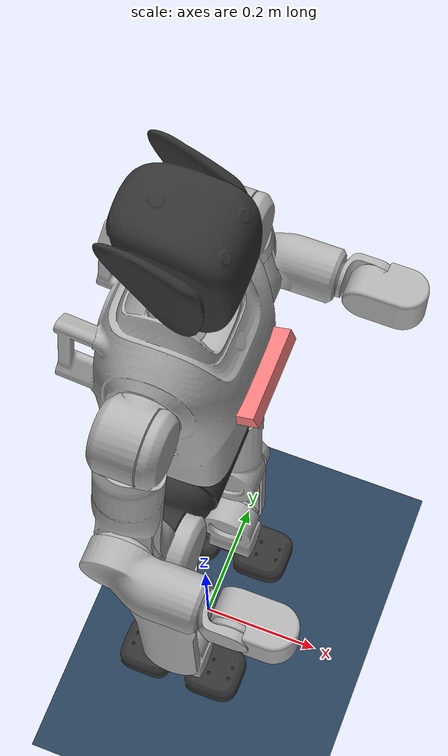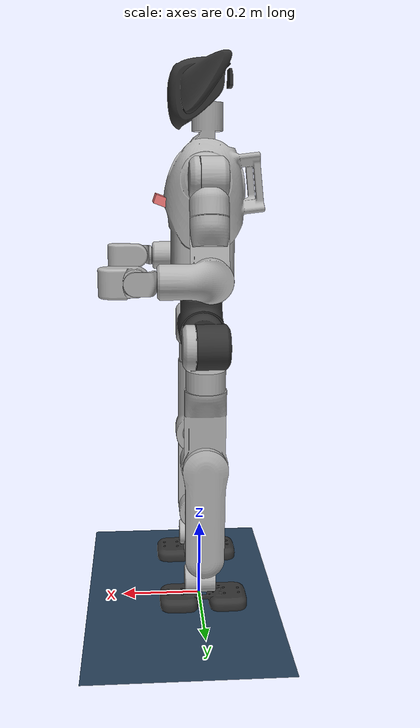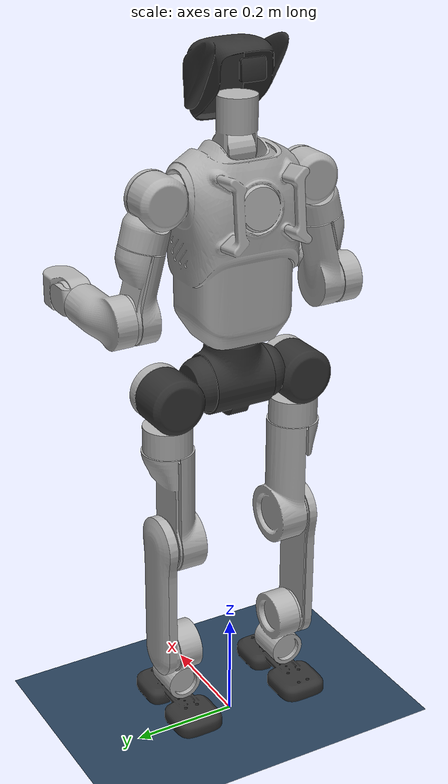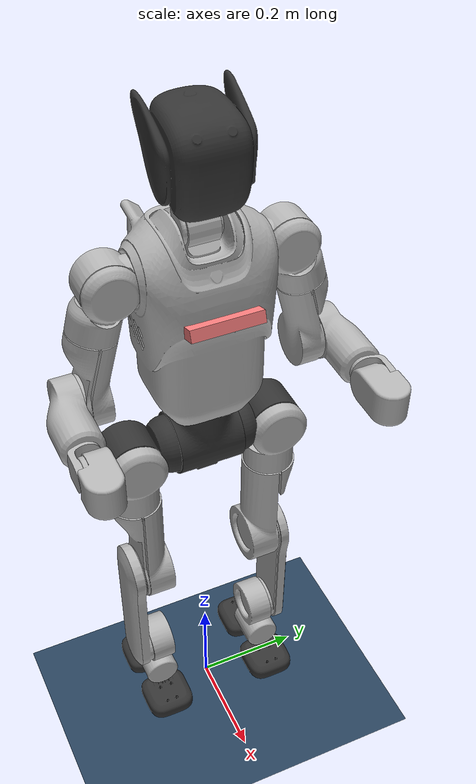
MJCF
<mujoco model="E1_v2">
  <compiler angle="radian" meshdir="../meshes/"/>

  <default>
    <default class="e1">
      <geom contype="0" conaffinity="0"/>
      <joint frictionloss="0.01" damping="0.01"/>

      <default class="hip">
        <default class="hip_pitch">
          <joint axis="0 1 0" range="-2.5307 2.8798" actuatorfrcrange="-120 120" armature="0.01"/>
        </default>
        <default class="hip_roll">
          <joint axis="1 0 0" actuatorfrcrange="-120 120" armature="0.01"/>
        </default>
        <default class="hip_yaw">
          <joint axis="0 0 1" range="-2.0944 2.0944" actuatorfrcrange="-36 36" armature="0.01"/>
        </default>
      </default>
      <default class="knee">
        <joint axis="0 1 0" range="0 2.2689" actuatorfrcrange="-120 120" armature="0.01"/>
      </default>
      <default class="ankle">
        <default class="ankle_pitch">
          <joint axis="0 1 0" range="-0.5236 0.5236" actuatorfrcrange="-36 36" armature="0.01"/>
        </default>
        <default class="ankle_roll">
          <joint axis="1 0 0" range="-1.5708 1.5708" actuatorfrcrange="-30 30" armature="0.01"/>
        </default>
      </default>
      <default class="waist_yaw">
        <joint axis="0 0 1" range="-2.0944 2.0944" actuatorfrcrange="-60 60" armature="0.01"/>
      </default>
      <default class="shoulder">
        <default class="shoulder_pitch">
          <joint axis="0 1 0" range="-2.2253 0.9163" actuatorfrcrange="-60 60" armature="0.01"/>
        </default>
        <default class="shoulder_roll">
          <joint axis="1 0 0" actuatorfrcrange="-36 36" armature="0.01"/>
        </default>
        <default class="shoulder_yaw">
          <joint axis="0 0 1" range="-2.0944 2.0944" actuatorfrcrange="-15 15" armature="0.01"/>
        </default>
      </default>
      <default class="elbow">
        <joint axis="0 1 0" range="-0.698 1.5708" actuatorfrcrange="-60 60" armature="0.01"/>
      </default>

      <default class="visual">
        <geom group="2" type="mesh" density="0" material="silver"/>
      </default>
      <default class="collision">
        <geom group="3" type="mesh" rgba=".2 .6 .2 .3" contype="1" conaffinity="1"/>
        <default class="foot_capsule">
          <geom type="capsule" size="0.01"/>
        </default>
      </default>
    </default>
  </default>

  <asset>
    <material name="silver" rgba="0.7 0.7 0.7 1"/>
    <material name="black" rgba="0.2 0.2 0.2 1"/>

    <mesh name="pelvis" file="pelvis.STL"/>
    <mesh name="left_hip_pitch_link_v1" file="left_hip_pitch_link_v1.STL"/>
    <mesh name="left_hip_roll_link_v1" file="left_hip_roll_link_v1.STL"/>
    <mesh name="left_hip_yaw_link" file="left_hip_yaw_link.STL"/>
    <mesh name="left_knee_link" file="left_knee_link.STL"/>
    <mesh name="left_ankle_pitch_link" file="left_ankle_pitch_link.STL"/>
    <mesh name="left_ankle_roll_link_v1_2" file="left_ankle_roll_link_v1_2.STL"/>
    <mesh name="right_hip_pitch_link_v1" file="right_hip_pitch_link_v1.STL"/>
    <mesh name="right_hip_roll_link_v1" file="right_hip_roll_link_v1.STL"/>
    <mesh name="right_hip_yaw_link" file="right_hip_yaw_link.STL"/>
    <mesh name="right_knee_link" file="right_knee_link.STL"/>
    <mesh name="right_ankle_pitch_link" file="right_ankle_pitch_link.STL"/>
    <mesh name="right_ankle_roll_link_v1_2" file="right_ankle_roll_link_v1_2.STL"/>
    <mesh name="torso_link" file="torso_link.STL"/>
    <mesh name="left_shoulder_pitch_link" file="left_shoulder_pitch_link.STL"/>
    <mesh name="left_shoulder_roll_link" file="left_shoulder_roll_link.STL"/>
    <mesh name="left_shoulder_yaw_link" file="left_shoulder_yaw_link.STL"/>
    <mesh name="left_elbow_link" file="left_elbow_link.STL"/>
    <mesh name="left_wrist_roll_link" file="left_wrist_roll_link.STL"/>
    <mesh name="left_wrist_pitch_link" file="left_wrist_pitch_link.STL"/>
    <mesh name="right_shoulder_pitch_link" file="right_shoulder_pitch_link.STL"/>
    <mesh name="right_shoulder_roll_link" file="right_shoulder_roll_link.STL"/>
    <mesh name="right_shoulder_yaw_link" file="right_shoulder_yaw_link.STL"/>
    <mesh name="right_elbow_link" file="right_elbow_link.STL"/>
    <mesh name="right_wrist_roll_link" file="right_wrist_roll_link.STL"/>
    <mesh name="right_wrist_pitch_link" file="right_wrist_pitch_link.STL"/>
    <mesh name="head_pitch_link" file="head_pitch_link.STL"/>
    <mesh name="head_yaw_link" file="head_yaw_link.STL"/>
  </asset>

  <worldbody>
    <body name="pelvis" pos="0 0 0.715" childclass="e1">
      <inertial pos="-2.026e-05 0 0.0250193" quat="1 -1.77058e-05 -6.2652e-05 0.000906207" mass="3.6" diaginertia="0.0112704 0.00928407 0.00672158"/>
      <freejoint name="floating_base_joint"/>
      <geom class="visual" material="black" mesh="pelvis"/>
      <geom class="visual" mesh="pelvis"/>
      <geom class="collision" mesh="pelvis"/>
      <body name="left_hip_pitch_link" pos="0 0.0575 0">
        <inertial pos="-0.00088321 0.00557735 0.00140978" quat="0.775267 0.629946 -0.0078282 0.0454583" mass="1.334" diaginertia="0.00189368 0.00156703 0.00119457"/>
        <joint name="left_hip_pitch_joint" class="hip_pitch"/>
        <geom class="visual" material="black" mesh="left_hip_pitch_link_v1"/>
        <body name="left_hip_roll_link" pos="0 0.0725 -0.012">
          <inertial pos="-0.00054795 0.00928439 -0.070913" quat="0.72708 0.0123078 0.0971982 0.679526" mass="0.981" diaginertia="0.00140293 0.0012261 0.000954215"/>
          <joint name="left_hip_roll_joint" class="hip_roll" range="-0.5236 3.1416"/>
          <geom class="visual" mesh="left_hip_roll_link_v1"/>
          <geom class="collision" mesh="left_hip_roll_link_v1"/>
          <body name="left_hip_yaw_link" pos="0 0 -0.106">
            <inertial pos="-8.81e-06 -0.00845833 -0.163113" quat="0.707299 -0.00656895 0.00682479 0.706851" mass="1.56" diaginertia="0.00493085 0.00429472 0.00135114"/>
            <joint name="left_hip_yaw_joint" class="hip_yaw"/>
            <geom class="visual" mesh="left_hip_yaw_link"/>
            <geom class="collision" mesh="left_hip_yaw_link"/>
            <body name="left_knee_link" pos="0 0 -0.182">
              <inertial pos="-0.00054127 0.020434 -0.100513" quat="0.710429 -0.000848428 0.00238427 0.703764" mass="0.389" diaginertia="0.00417321 0.00390613 0.000296172"/>
              <joint name="left_knee_joint" class="knee"/>
              <geom class="visual" mesh="left_knee_link"/>
              <geom class="collision" mesh="left_knee_link"/>
              <body name="left_ankle_pitch_link" pos="0 0 -0.23">
                <inertial pos="0.00011592 -0.00958151 -0.0284272" quat="0.705154 0.0494053 -0.049277 0.705612" mass="1.333" diaginertia="0.00253878 0.00227413 0.000815969"/>
                <joint name="left_ankle_pitch_joint" class="ankle_pitch"/>
                <geom class="visual" mesh="left_ankle_pitch_link"/>
                <body name="left_ankle_roll_link" pos="0 -0.016 -0.07">
                  <inertial pos="-0.00176848 0 -0.0465728" quat="0 0.706212 0 0.708" mass="0.578" diaginertia="0.0023466 0.00219847 0.000444688"/>
                  <joint name="left_ankle_roll_joint" class="ankle_roll"/>
                  <site name="left_foot_height_scan" pos="0 0 0" size="0.005" rgba="0 0 0 0"/>
                  <geom class="visual" material="black" mesh="left_ankle_roll_link_v1_2"/>
                  <geom name="left_foot1_collision" class="foot_capsule" fromto="-0.097 -0.037 -0.0578 0.097 -0.037 -0.0578"/>
                  <geom name="left_foot2_collision" class="foot_capsule" fromto="-0.097 -0.025 -0.0578 0.097 -0.025 -0.0578"/>
                  <geom name="left_foot3_collision" class="foot_capsule" fromto="-0.097 -0.0125 -0.0578 0.097 -0.0125 -0.0578"/>
                  <geom name="left_foot4_collision" class="foot_capsule" fromto="-0.097 0 -0.0578 0.097 0 -0.0578"/>
                  <geom name="left_foot5_collision" class="foot_capsule" fromto="-0.097 0.0125 -0.0578 0.097 0.0125 -0.0578"/>
                  <geom name="left_foot6_collision" class="foot_capsule" fromto="-0.097 0.025 -0.0578 0.097 0.025 -0.0578"/>
                  <geom name="left_foot7_collision" class="foot_capsule" fromto="-0.097 0.037 -0.0578 0.097 0.037 -0.0578"/>
                </body>
              </body>
            </body>
          </body>
        </body>
      </body>
      <body name="right_hip_pitch_link" pos="0 -0.0575 0">
        <inertial pos="-0.00088321 -0.00557735 0.00140978" quat="0.629946 0.775267 -0.0454583 0.0078282" mass="1.334" diaginertia="0.00189368 0.00156703 0.00119457"/>
        <joint name="right_hip_pitch_joint" class="hip_pitch"/>
        <geom class="visual" material="black" mesh="right_hip_pitch_link_v1"/>
        <body name="right_hip_roll_link" pos="0 -0.0725 -0.012">
          <inertial pos="-0.00054795 -0.00928439 -0.070913" quat="0.679526 0.0971982 0.0123078 0.72708" mass="0.981" diaginertia="0.00140293 0.0012261 0.000954215"/>
          <joint name="right_hip_roll_joint" class="hip_roll" range="-3.1416 0.5236"/>
          <geom class="visual" mesh="right_hip_roll_link_v1"/>
          <geom class="collision" mesh="right_hip_roll_link_v1"/>
          <body name="right_hip_yaw_link" pos="0 0 -0.106">
            <inertial pos="8.81e-06 0.00845833 -0.163113" quat="0.707267 0.00689281 -0.00650074 0.706883" mass="1.561" diaginertia="0.00493085 0.00429472 0.00135113"/>
            <joint name="right_hip_yaw_joint" class="hip_yaw"/>
            <geom class="visual" mesh="right_hip_yaw_link"/>
            <geom class="collision" mesh="right_hip_yaw_link"/>
            <body name="right_knee_link" pos="0 0 -0.182">
              <inertial pos="-0.00054256 -0.020434 -0.100513" quat="0.703753 0.00255437 -0.000679727 0.71044" mass="0.389" diaginertia="0.00417321 0.00390614 0.000296163"/>
              <joint name="right_knee_joint" class="knee"/>
              <geom class="visual" mesh="right_knee_link"/>
              <geom class="collision" mesh="right_knee_link"/>
              <body name="right_ankle_pitch_link" pos="0 0 -0.23">
                <inertial pos="0.00011592 0.00956002 -0.0284576" quat="0.706733 -0.0493233 0.0493065 0.704035" mass="1.333" diaginertia="0.0025364 0.00227145 0.000815675"/>
                <joint name="right_ankle_pitch_joint" class="ankle_pitch"/>
                <geom class="visual" mesh="right_ankle_pitch_link"/>
                <body name="right_ankle_roll_link" pos="0 0.016 -0.07">
                  <inertial pos="-0.00176848 0 -0.0465753" quat="0 0.706212 0 0.708" mass="0.578" diaginertia="0.0023466 0.00219847 0.000444688"/>
                  <joint name="right_ankle_roll_joint" class="ankle_roll"/>
                  <site name="right_foot_height_scan" pos="0 0 0" size="0.005" rgba="0 0 0 0"/>
                  <geom class="visual" material="black" mesh="right_ankle_roll_link_v1_2"/>
                  <geom name="right_foot1_collision" class="foot_capsule" fromto="-0.097 -0.037 -0.0578 0.097 -0.037 -0.0578"/>
                  <geom name="right_foot2_collision" class="foot_capsule" fromto="-0.097 -0.025 -0.0578 0.097 -0.025 -0.0578"/>
                  <geom name="right_foot3_collision" class="foot_capsule" fromto="-0.097 -0.0125 -0.0578 0.097 -0.0125 -0.0578"/>
                  <geom name="right_foot4_collision" class="foot_capsule" fromto="-0.097 0 -0.0578 0.097 0 -0.0578"/>
                  <geom name="right_foot5_collision" class="foot_capsule" fromto="-0.097 0.0125 -0.0578 0.097 0.0125 -0.0578"/>
                  <geom name="right_foot6_collision" class="foot_capsule" fromto="-0.097 0.025 -0.0578 0.097 0.025 -0.0578"/>
                  <geom name="right_foot7_collision" class="foot_capsule" fromto="-0.097 0.037 -0.0578 0.097 0.037 -0.0578"/>
                </body>
              </body>
            </body>
          </body>
        </body>
      </body>
      <body name="torso_link" pos="0 0 0.12">
        <inertial pos="0.00939865 -0.00010371 0.142031" quat="0.998895 0.000719594 0.047 0.000291884" mass="5.45" diaginertia="0.0520713 0.039092 0.0193737"/>
        <joint name="waist_yaw_joint" class="waist_yaw"/>
        <site name="imu_in_torso" size="0.01" pos="0 0 0" rgba="0 0 0 0"/>
        <geom class="visual" mesh="torso_link"/>
        <geom class="collision" mesh="torso_link"/>
        <!-- Torso origin is 0.12 m above pelvis.  This local pose preserves
             the former pelvis-relative camera pose (0.09, 0.0, 0.30). -->
        <camera name="depth_cam" pos="0.090 0.0 0.18" xyaxes="0 -1 0  0.940 0 0.342" fovy="58" resolution="64 36"/>
        <geom name="depth_cam_vis" pos="0.090 0.0 0.18" quat="0.6964 0.1228 -0.1228 -0.6964" size="0.06 0.02 0.01" rgba="1.0 0.5 0.5 1" type="box" group="2" contype="0" conaffinity="0"/>
        <body name="left_shoulder_pitch_link" pos="0 0.109 0.23">
          <inertial pos="0.0002164 0.0326152 7.9e-06" quat="0.705969 0.707947 -0.0128594 -0.015888" mass="0.764" diaginertia="0.000639277 0.000540109 0.000448694"/>
          <joint name="left_shoulder_pitch_joint" class="shoulder_pitch"/>
          <geom class="visual" mesh="left_shoulder_pitch_link"/>
          <body name="left_shoulder_roll_link" pos="0 0.036 0">
            <inertial pos="0.0091122 0.017234 -0.042207" quat="0.964204 0.187993 0.182061 0.0426904" mass="0.5" diaginertia="0.000780092 0.000718395 0.000287923"/>
            <joint name="left_shoulder_roll_joint" class="shoulder_roll" range="-0.5236 3.1416"/>
            <geom class="visual" mesh="left_shoulder_roll_link"/>
            <body name="left_shoulder_yaw_link" pos="0 0.03235 -0.091754" quat="0.991445 0.130526 0 0">
              <inertial pos="-3.07e-06 -0.0105563 -0.100188" quat="0.707013 0.0205321 -0.0204544 0.706606" mass="0.909" diaginertia="0.00125616 0.00114044 0.000561167"/>
              <joint name="left_shoulder_yaw_joint" class="shoulder_yaw"/>
              <geom class="visual" mesh="left_shoulder_yaw_link"/>
              <geom class="collision" mesh="left_shoulder_yaw_link"/>
              <body name="left_elbow_link" pos="0 0.016368 -0.11645" quat="0.991445 -0.130526 0 0">
                <inertial pos="0.0734429 0.0108741 -2.677e-05" quat="0.520428 0.521868 0.477567 0.478266" mass="0.525" diaginertia="0.000525457 0.00049276 0.000235073"/>
                <joint name="left_elbow_joint" class="elbow"/>
                <geom class="visual" mesh="left_elbow_link"/>
                <geom class="collision" mesh="left_elbow_link"/>
                <body name="left_wrist_roll_link" pos="0.1 0.0117 0">
                  <geom class="visual" mesh="left_wrist_roll_link"/>
                  <geom class="collision" mesh="left_wrist_roll_link"/>
                  <body name="left_wrist_pitch_link" pos="0.053 0 0">
                    <inertial pos="0.0225121 -0.00014957 -0.0006746" quat="0.621742 0.351469 0.601172 0.358467" mass="0.575" diaginertia="0.000487596 0.000487332 0.000193483"/>
                    <geom class="visual" mesh="left_wrist_pitch_link"/>
                    <geom class="collision" mesh="left_wrist_pitch_link"/>
                  </body>
                </body>
              </body>
            </body>
          </body>
        </body>
        <body name="right_shoulder_pitch_link" pos="0 -0.109 0.23">
          <inertial pos="0.0002164 -0.0326133 4.54e-06" quat="0.708239 0.705683 0.0154121 0.013133" mass="0.764" diaginertia="0.000639261 0.00053997 0.000448819"/>
          <joint name="right_shoulder_pitch_joint" class="shoulder_pitch"/>
          <geom class="visual" mesh="right_shoulder_pitch_link"/>
          <body name="right_shoulder_roll_link" pos="0 -0.036 0">
            <inertial pos="0.0091121 -0.017234 -0.042207" quat="0.964204 -0.187995 0.18206 -0.0426971" mass="0.5" diaginertia="0.000780102 0.000718405 0.000287933"/>
            <joint name="right_shoulder_roll_joint" class="shoulder_roll" range="-3.1416 0.5236"/>
            <geom class="visual" mesh="right_shoulder_roll_link"/>
            <body name="right_shoulder_yaw_link" pos="0 -0.03235 -0.091754" quat="0.991445 -0.130526 0 0">
              <inertial pos="0 0.0105679 -0.100231" quat="0.706633 -0.0209942 0.0209465 0.706959" mass="0.91" diaginertia="0.0012565 0.00114115 0.000561537"/>
              <joint name="right_shoulder_yaw_joint" class="shoulder_yaw"/>
              <geom class="visual" mesh="right_shoulder_yaw_link"/>
              <geom class="collision" mesh="right_shoulder_yaw_link"/>
              <body name="right_elbow_link" pos="0 -0.016368 -0.11645" quat="0.991445 0.130526 0 0">
                <inertial pos="0.00023724 -2.499e-05 2.678e-05" quat="0.477567 0.478266 0.520428 0.521868" mass="0.525" diaginertia="0.000525457 0.00049276 0.000235073"/>
                <joint name="right_elbow_joint" class="elbow"/>
                <geom class="visual" mesh="right_elbow_link"/>
                <geom class="collision" mesh="right_elbow_link"/>
                <body name="right_wrist_roll_link" pos="0.1 -0.0117 0">
                  <geom class="visual" mesh="right_wrist_roll_link"/>
                  <geom class="collision" mesh="right_wrist_roll_link"/>
                  <body name="right_wrist_pitch_link" pos="0.053 0 0">
                    <inertial pos="0.0224977 0.00014957 -0.00067803" quat="0.424067 0.559328 0.415264 0.578684" mass="0.575" diaginertia="0.000487178 0.000486987 0.000193495"/>
                    <geom class="visual" mesh="right_wrist_pitch_link"/>
                    <geom class="collision" mesh="right_wrist_pitch_link"/>
                  </body>
                </body>
              </body>
            </body>
          </body>
        </body>
        <body name="head_pitch_link" pos="0 0 0.295">
          <inertial pos="-0.0065914 0 0.042173" quat="0.997131 0 -0.0756995 0" mass="0.5" diaginertia="0.000552284 0.00052758 0.000205916"/>
          <geom class="visual" mesh="head_pitch_link"/>
          <geom class="collision" mesh="head_pitch_link"/>
          <body name="head_yaw_link" pos="-0.01 0 0.095">
            <inertial pos="0.042627 -1.307e-06 0.027428" quat="0.980498 -0.000152354 -0.19653 8.28251e-05" mass="0.6" diaginertia="0.000933823 0.00073769 0.000559467"/>
            <geom class="visual" material="black" mesh="head_yaw_link"/>
            <geom class="collision" mesh="head_yaw_link"/>
          </body>
        </body>
      </body>
    </body>
  </worldbody>

  <contact>
    <pair name="left_foot1_floor" geom1="left_foot1_collision" geom2="floor" solref="0.01 1" friction="0.8 0.8"/>
    <pair name="left_foot2_floor" geom1="left_foot2_collision" geom2="floor" solref="0.01 1" friction="0.8 0.8"/>
    <pair name="left_foot3_floor" geom1="left_foot3_collision" geom2="floor" solref="0.01 1" friction="0.8 0.8"/>
    <pair name="left_foot4_floor" geom1="left_foot4_collision" geom2="floor" solref="0.01 1" friction="0.8 0.8"/>
    <pair name="left_foot5_floor" geom1="left_foot5_collision" geom2="floor" solref="0.01 1" friction="0.8 0.8"/>
    <pair name="left_foot6_floor" geom1="left_foot6_collision" geom2="floor" solref="0.01 1" friction="0.8 0.8"/>
    <pair name="left_foot7_floor" geom1="left_foot7_collision" geom2="floor" solref="0.01 1" friction="0.8 0.8"/>
    <pair name="right_foot1_floor" geom1="right_foot1_collision" geom2="floor" solref="0.01 1" friction="0.8 0.8"/>
    <pair name="right_foot2_floor" geom1="right_foot2_collision" geom2="floor" solref="0.01 1" friction="0.8 0.8"/>
    <pair name="right_foot3_floor" geom1="right_foot3_collision" geom2="floor" solref="0.01 1" friction="0.8 0.8"/>
    <pair name="right_foot4_floor" geom1="right_foot4_collision" geom2="floor" solref="0.01 1" friction="0.8 0.8"/>
    <pair name="right_foot5_floor" geom1="right_foot5_collision" geom2="floor" solref="0.01 1" friction="0.8 0.8"/>
    <pair name="right_foot6_floor" geom1="right_foot6_collision" geom2="floor" solref="0.01 1" friction="0.8 0.8"/>
    <pair name="right_foot7_floor" geom1="right_foot7_collision" geom2="floor" solref="0.01 1" friction="0.8 0.8"/>
  </contact>

  <actuator>
    <!-- LEFT LEG -->
    <motor name="left_hip_pitch"  joint="left_hip_pitch_joint"  gear="1" ctrllimited="true" ctrlrange="-120 120"/>
    <motor name="left_hip_roll"   joint="left_hip_roll_joint"   gear="1" ctrllimited="true" ctrlrange="-120 120"/>
    <motor name="left_hip_yaw"    joint="left_hip_yaw_joint"    gear="1" ctrllimited="true" ctrlrange="-36 36"/>
    <motor name="left_knee"       joint="left_knee_joint"       gear="1" ctrllimited="true" ctrlrange="-120 120"/>
    <motor name="left_ankle_pitch" joint="left_ankle_pitch_joint" gear="1" ctrllimited="true" ctrlrange="-36 36"/>
    <motor name="left_ankle_roll"  joint="left_ankle_roll_joint"  gear="1" ctrllimited="true" ctrlrange="-30 30"/>
    <!-- RIGHT LEG -->
    <motor name="right_hip_pitch"  joint="right_hip_pitch_joint"  gear="1" ctrllimited="true" ctrlrange="-120 120"/>
    <motor name="right_hip_roll"   joint="right_hip_roll_joint"   gear="1" ctrllimited="true" ctrlrange="-120 120"/>
    <motor name="right_hip_yaw"    joint="right_hip_yaw_joint"    gear="1" ctrllimited="true" ctrlrange="-36 36"/>
    <motor name="right_knee"       joint="right_knee_joint"       gear="1" ctrllimited="true" ctrlrange="-120 120"/>
    <motor name="right_ankle_pitch" joint="right_ankle_pitch_joint" gear="1" ctrllimited="true" ctrlrange="-36 36"/>
    <motor name="right_ankle_roll"  joint="right_ankle_roll_joint"  gear="1" ctrllimited="true" ctrlrange="-30 30"/>
    <!-- WAIST -->
    <motor name="waist_yaw" joint="waist_yaw_joint" gear="1" ctrllimited="true" ctrlrange="-60 60"/>
    <!-- LEFT ARM -->
    <motor name="left_shoulder_pitch" joint="left_shoulder_pitch_joint" gear="1" ctrllimited="true" ctrlrange="-60 60"/>
    <motor name="left_shoulder_roll"  joint="left_shoulder_roll_joint"  gear="1" ctrllimited="true" ctrlrange="-36 36"/>
    <motor name="left_shoulder_yaw"   joint="left_shoulder_yaw_joint"   gear="1" ctrllimited="true" ctrlrange="-15 15"/>
    <motor name="left_elbow"          joint="left_elbow_joint"          gear="1" ctrllimited="true" ctrlrange="-60 60"/>
    <!-- RIGHT ARM -->
    <motor name="right_shoulder_pitch" joint="right_shoulder_pitch_joint" gear="1" ctrllimited="true" ctrlrange="-60 60"/>
    <motor name="right_shoulder_roll"  joint="right_shoulder_roll_joint"  gear="1" ctrllimited="true" ctrlrange="-36 36"/>
    <motor name="right_shoulder_yaw"   joint="right_shoulder_yaw_joint"   gear="1" ctrllimited="true" ctrlrange="-15 15"/>
    <motor name="right_elbow"          joint="right_elbow_joint"          gear="1" ctrllimited="true" ctrlrange="-60 60"/>
  </actuator>

  <sensor>
    <!-- Joint position sensors -->
    <jointpos name="left_hip_pitch_pos" joint="left_hip_pitch_joint"/>
    <jointpos name="left_hip_roll_pos" joint="left_hip_roll_joint"/>
    <jointpos name="left_hip_yaw_pos" joint="left_hip_yaw_joint"/>
    <jointpos name="left_knee_pos" joint="left_knee_joint"/>
    <jointpos name="left_ankle_pitch_pos" joint="left_ankle_pitch_joint"/>
    <jointpos name="left_ankle_roll_pos" joint="left_ankle_roll_joint"/>
    <jointpos name="right_hip_pitch_pos" joint="right_hip_pitch_joint"/>
    <jointpos name="right_hip_roll_pos" joint="right_hip_roll_joint"/>
    <jointpos name="right_hip_yaw_pos" joint="right_hip_yaw_joint"/>
    <jointpos name="right_knee_pos" joint="right_knee_joint"/>
    <jointpos name="right_ankle_pitch_pos" joint="right_ankle_pitch_joint"/>
    <jointpos name="right_ankle_roll_pos" joint="right_ankle_roll_joint"/>
    <jointpos name="waist_yaw_pos" joint="waist_yaw_joint"/>
    <jointpos name="left_shoulder_pitch_pos" joint="left_shoulder_pitch_joint"/>
    <jointpos name="left_shoulder_roll_pos" joint="left_shoulder_roll_joint"/>
    <jointpos name="left_shoulder_yaw_pos" joint="left_shoulder_yaw_joint"/>
    <jointpos name="left_elbow_pos" joint="left_elbow_joint"/>
    <jointpos name="right_shoulder_pitch_pos" joint="right_shoulder_pitch_joint"/>
    <jointpos name="right_shoulder_roll_pos" joint="right_shoulder_roll_joint"/>
    <jointpos name="right_shoulder_yaw_pos" joint="right_shoulder_yaw_joint"/>
    <jointpos name="right_elbow_pos" joint="right_elbow_joint"/>
    <!-- Joint velocity sensors -->
    <jointvel name="left_hip_pitch_vel" joint="left_hip_pitch_joint"/>
    <jointvel name="left_hip_roll_vel" joint="left_hip_roll_joint"/>
    <jointvel name="left_hip_yaw_vel" joint="left_hip_yaw_joint"/>
    <jointvel name="left_knee_vel" joint="left_knee_joint"/>
    <jointvel name="left_ankle_pitch_vel" joint="left_ankle_pitch_joint"/>
    <jointvel name="left_ankle_roll_vel" joint="left_ankle_roll_joint"/>
    <jointvel name="right_hip_pitch_vel" joint="right_hip_pitch_joint"/>
    <jointvel name="right_hip_roll_vel" joint="right_hip_roll_joint"/>
    <jointvel name="right_hip_yaw_vel" joint="right_hip_yaw_joint"/>
    <jointvel name="right_knee_vel" joint="right_knee_joint"/>
    <jointvel name="right_ankle_pitch_vel" joint="right_ankle_pitch_joint"/>
    <jointvel name="right_ankle_roll_vel" joint="right_ankle_roll_joint"/>
    <jointvel name="waist_yaw_vel" joint="waist_yaw_joint"/>
    <jointvel name="left_shoulder_pitch_vel" joint="left_shoulder_pitch_joint"/>
    <jointvel name="left_shoulder_roll_vel" joint="left_shoulder_roll_joint"/>
    <jointvel name="left_shoulder_yaw_vel" joint="left_shoulder_yaw_joint"/>
    <jointvel name="left_elbow_vel" joint="left_elbow_joint"/>
    <jointvel name="right_shoulder_pitch_vel" joint="right_shoulder_pitch_joint"/>
    <jointvel name="right_shoulder_roll_vel" joint="right_shoulder_roll_joint"/>
    <jointvel name="right_shoulder_yaw_vel" joint="right_shoulder_yaw_joint"/>
    <jointvel name="right_elbow_vel" joint="right_elbow_joint"/>
    <!-- Actuator torque sensors -->
    <actuatorfrc name="left_hip_pitch_torque" actuator="left_hip_pitch"/>
    <actuatorfrc name="left_hip_roll_torque" actuator="left_hip_roll"/>
    <actuatorfrc name="left_hip_yaw_torque" actuator="left_hip_yaw"/>
    <actuatorfrc name="left_knee_torque" actuator="left_knee"/>
    <actuatorfrc name="left_ankle_pitch_torque" actuator="left_ankle_pitch"/>
    <actuatorfrc name="left_ankle_roll_torque" actuator="left_ankle_roll"/>
    <actuatorfrc name="right_hip_pitch_torque" actuator="right_hip_pitch"/>
    <actuatorfrc name="right_hip_roll_torque" actuator="right_hip_roll"/>
    <actuatorfrc name="right_hip_yaw_torque" actuator="right_hip_yaw"/>
    <actuatorfrc name="right_knee_torque" actuator="right_knee"/>
    <actuatorfrc name="right_ankle_pitch_torque" actuator="right_ankle_pitch"/>
    <actuatorfrc name="right_ankle_roll_torque" actuator="right_ankle_roll"/>
    <actuatorfrc name="waist_yaw_torque" actuator="waist_yaw"/>
    <actuatorfrc name="left_shoulder_pitch_torque" actuator="left_shoulder_pitch"/>
    <actuatorfrc name="left_shoulder_roll_torque" actuator="left_shoulder_roll"/>
    <actuatorfrc name="left_shoulder_yaw_torque" actuator="left_shoulder_yaw"/>
    <actuatorfrc name="left_elbow_torque" actuator="left_elbow"/>
    <actuatorfrc name="right_shoulder_pitch_torque" actuator="right_shoulder_pitch"/>
    <actuatorfrc name="right_shoulder_roll_torque" actuator="right_shoulder_roll"/>
    <actuatorfrc name="right_shoulder_yaw_torque" actuator="right_shoulder_yaw"/>
    <actuatorfrc name="right_elbow_torque" actuator="right_elbow"/>

    <framequat name="orientation" objtype="site" noise="0.001" objname="imu_in_torso"/>
    <framepos name="position" objtype="site" noise="0.001" objname="imu_in_torso"/>
    <!-- Compatibility IMU names used by legacy sim2sim and Mimic tools. -->
    <framezaxis name="imu_upvector" objtype="body" objname="world" reftype="site" refname="imu_in_torso"/>
    <velocimeter name="imu_lin_vel" site="imu_in_torso"/>
    <gyro name="imu_ang_vel" cutoff="34.9" noise="0.005" site="imu_in_torso"/>
    <gyro name="angular-velocity" cutoff="34.9" noise="0.005" site="imu_in_torso"/>
  </sensor>

  <visual>
    <headlight diffuse="0.6 0.6 0.6" ambient="0.3 0.3 0.3" specular="0 0 0"/>
    <rgba haze="0.15 0.25 0.35 1"/>
    <global azimuth="120" elevation="-20"/>
  </visual>

  <asset>
    <texture type="skybox" builtin="gradient" rgb1="0.3 0.5 0.7" rgb2="0 0 0" width="512" height="3072"/>
    <texture type="2d" name="groundplane" builtin="checker" mark="edge" rgb1="0.2 0.3 0.4" rgb2="0.1 0.2 0.3"
             markrgb="0.8 0.8 0.8" width="300" height="300"/>
    <material name="groundplane" texture="groundplane" texuniform="true" texrepeat="5 5" reflectance="0.2"/>
  </asset>

  <worldbody>
    <light pos="0 0 1.5" dir="0 0 -1" directional="true"/>
    <geom name="floor" size="0 0 0.01" type="plane" material="groundplane" conaffinity="1"/>
  </worldbody>
</mujoco>
